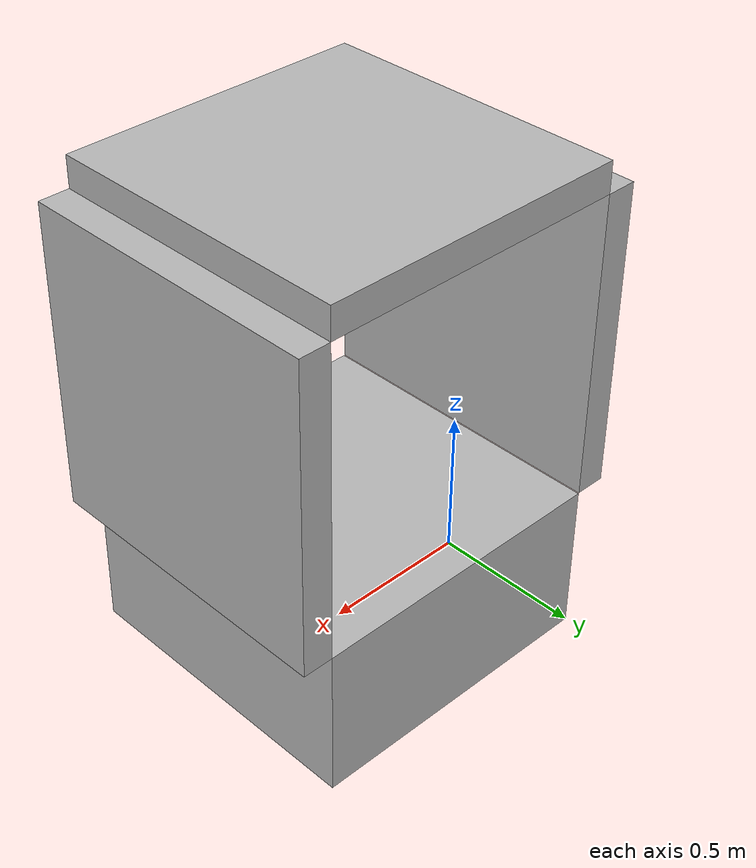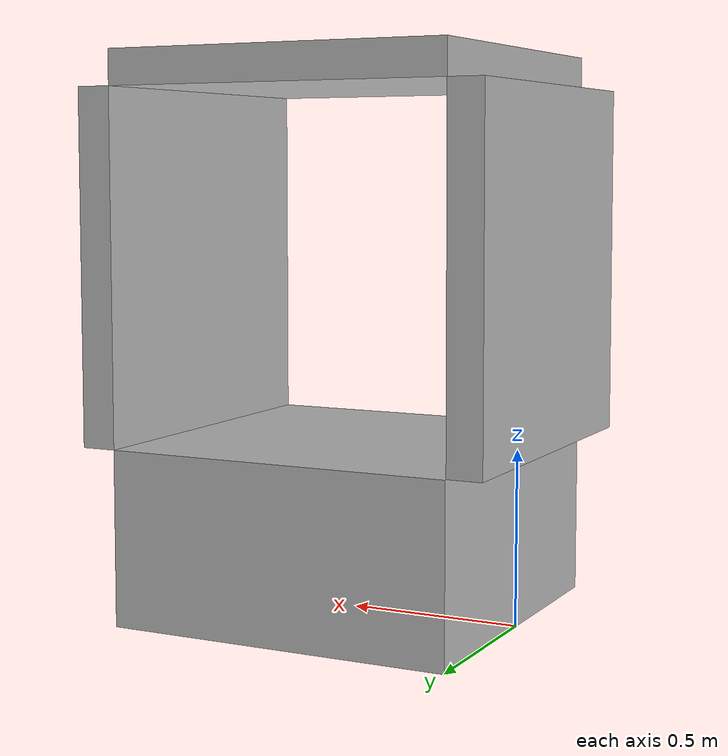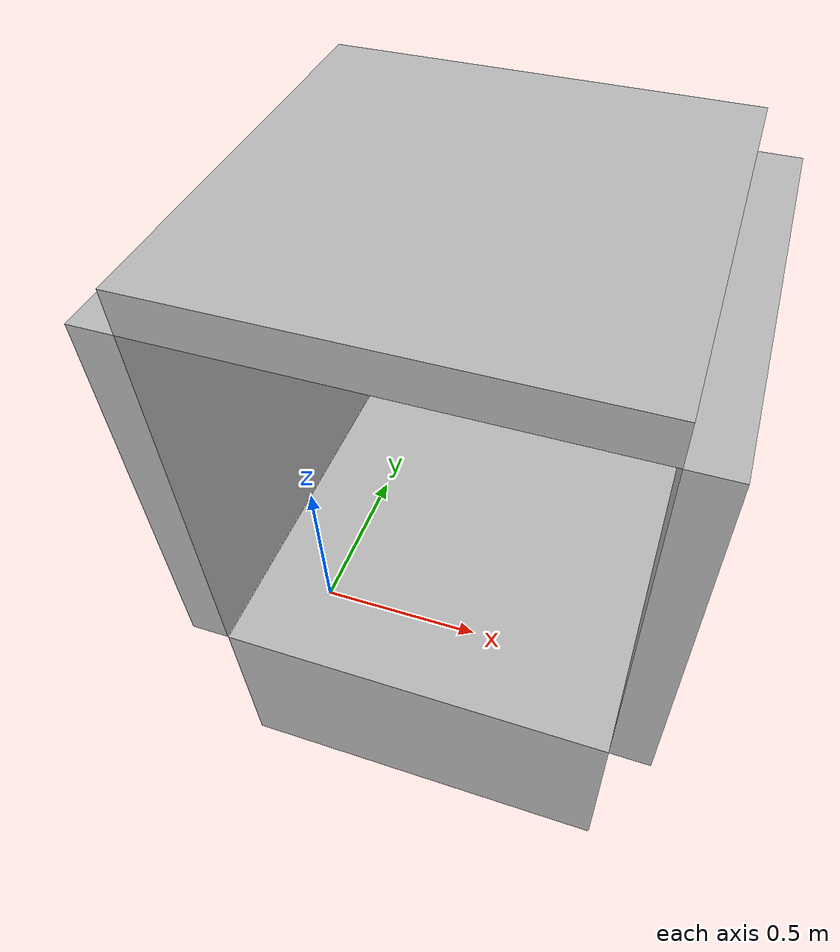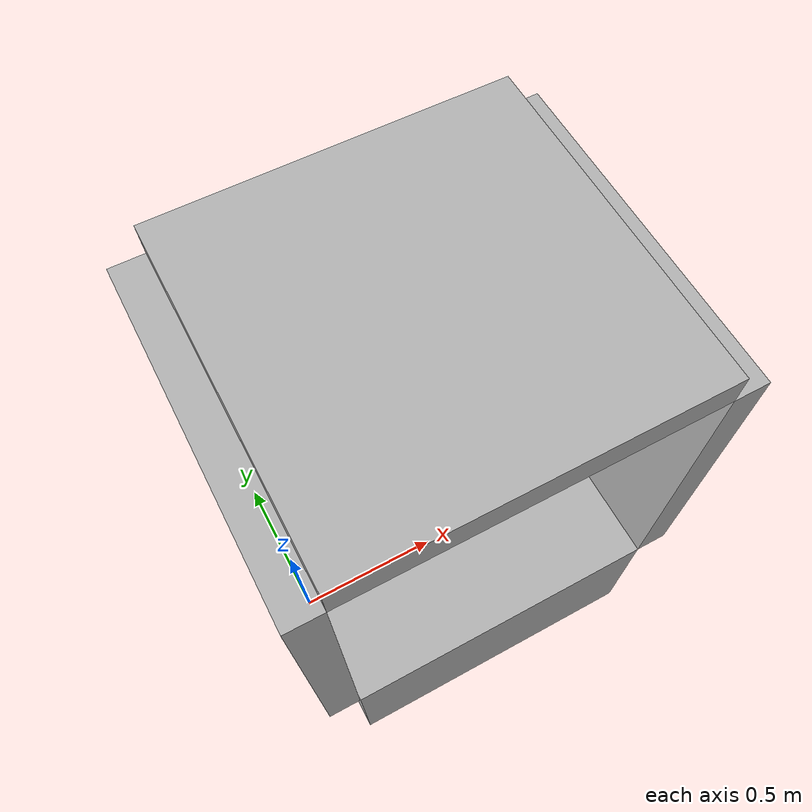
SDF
<sdf version='1.6'>
  <model name='incorrect_xacro'>
    <link name='right_pad1'>
      <pose frame=''>0 0 0 0 -0 0</pose>
      <inertial>
        <pose frame=''>0.5 0 0.25 0 -0 0</pose>
        <mass>0.5</mass>
        <inertia>
          <ixx>0.0001</ixx>
          <ixy>0</ixy>
          <ixz>0</ixz>
          <iyy>0.0001</iyy>
          <iyz>0</iyz>
          <izz>0.0001</izz>
        </inertia>
      </inertial>
      <collision name='right_pad1_collision_collision'>
        <pose frame=''>0.5 0 0.25 0 -0 0</pose>
        <geometry>
          <box>
            <size>1 1 0.5</size>
          </box>
        </geometry>
      </collision>
      <visual name='right_pad1_visual_visual'>
        <pose frame=''>0.5 0 0.25 0 -0 0</pose>
        <geometry>
          <box>
            <size>1 1 0.5</size>
          </box>
        </geometry>
      </visual>
    </link>
    <link name='right_pad2'>
      <pose frame=''>1 0 0.5 0 -1.57 0</pose>
      <inertial>
        <pose frame=''>0.5 0 -0.05 0 -0 0</pose>
        <mass>0.5</mass>
        <inertia>
          <ixx>0.0001</ixx>
          <ixy>0</ixy>
          <ixz>0</ixz>
          <iyy>0.0001</iyy>
          <iyz>0</iyz>
          <izz>0.0001</izz>
        </inertia>
      </inertial>
      <collision name='right_pad2_collision_collision'>
        <pose frame=''>0.5 0 -0.05 0 -0 0</pose>
        <geometry>
          <box>
            <size>1 1 0.1</size>
          </box>
        </geometry>
      </collision>
      <visual name='right_pad2_visual_visual'>
        <pose frame=''>0.5 0 -0.05 0 -0 0</pose>
        <geometry>
          <box>
            <size>1 1 0.1</size>
          </box>
        </geometry>
      </visual>
    </link>
    <joint name='right_pad1_joint' type='revolute'>
      <child>right_pad2</child>
      <parent>right_pad1</parent>
      <axis>
        <xyz>0 1 0</xyz>
        <limit>
          <lower>-3.14</lower>
          <upper>3.14</upper>
          <effort>1000</effort>
          <velocity>1000</velocity>
        </limit>
        <dynamics>
          <damping>0</damping>
          <friction>0</friction>
          <spring_reference>0</spring_reference>
          <spring_stiffness>0</spring_stiffness>
        </dynamics>
        <use_parent_model_frame>1</use_parent_model_frame>
      </axis>
    </joint>
    <link name='right_pad3'>
      <pose frame=''>1.0008 0 1.5 3.14159 -0.001593 3.14159</pose>
      <inertial>
        <pose frame=''>0.5 0 -0.05 0 -0 0</pose>
        <mass>0.5</mass>
        <inertia>
          <ixx>0.0001</ixx>
          <ixy>0</ixy>
          <ixz>0</ixz>
          <iyy>0.0001</iyy>
          <iyz>0</iyz>
          <izz>0.0001</izz>
        </inertia>
      </inertial>
      <collision name='right_pad3_collision_collision'>
        <pose frame=''>0.5 0 -0.05 0 -0 0</pose>
        <geometry>
          <box>
            <size>1 1 0.1</size>
          </box>
        </geometry>
      </collision>
      <visual name='right_pad3_visual_visual'>
        <pose frame=''>0.5 0 -0.05 0 -0 0</pose>
        <geometry>
          <box>
            <size>1 1 0.1</size>
          </box>
        </geometry>
      </visual>
    </link>
    <joint name='right_pad2_joint' type='revolute'>
      <child>right_pad3</child>
      <parent>right_pad2</parent>
      <axis>
        <xyz>0 1 0</xyz>
        <limit>
          <lower>-3.14</lower>
          <upper>3.14</upper>
          <effort>1000</effort>
          <velocity>1000</velocity>
        </limit>
        <dynamics>
          <damping>0</damping>
          <friction>0</friction>
          <spring_reference>0</spring_reference>
          <spring_stiffness>0</spring_stiffness>
        </dynamics>
        <use_parent_model_frame>1</use_parent_model_frame>
      </axis>
    </joint>
    <link name='right_pad4'>
      <pose frame=''>0.000798 0 1.50159 -3.14159 1.56841 -3.14159</pose>
      <inertial>
        <pose frame=''>0.5 0 -0.05 0 -0 0</pose>
        <mass>0.5</mass>
        <inertia>
          <ixx>0.0001</ixx>
          <ixy>0</ixy>
          <ixz>0</ixz>
          <iyy>0.0001</iyy>
          <iyz>0</iyz>
          <izz>0.0001</izz>
        </inertia>
      </inertial>
      <collision name='right_pad4_collision_collision'>
        <pose frame=''>0.5 0 -0.05 0 -0 0</pose>
        <geometry>
          <box>
            <size>1 1 0.1</size>
          </box>
        </geometry>
      </collision>
      <visual name='right_pad4_visual_visual'>
        <pose frame=''>0.5 0 -0.05 0 -0 0</pose>
        <geometry>
          <box>
            <size>1 1 0.1</size>
          </box>
        </geometry>
      </visual>
    </link>
    <joint name='right_pad3_joint' type='revolute'>
      <child>right_pad4</child>
      <parent>right_pad3</parent>
      <axis>
        <xyz>0 1 -0</xyz>
        <limit>
          <lower>-3.14</lower>
          <upper>3.14</upper>
          <effort>1000</effort>
          <velocity>1000</velocity>
        </limit>
        <dynamics>
          <damping>0</damping>
          <friction>0</friction>
          <spring_reference>0</spring_reference>
          <spring_stiffness>0</spring_stiffness>
        </dynamics>
        <use_parent_model_frame>1</use_parent_model_frame>
      </axis>
    </joint>
    <link name='dummy0_connection_right_pad1'>
      <pose frame=''>-0.001591 0 0.501595 0 0.003185 0</pose>
      <inertial>
        <pose frame=''>0 0 0 0 -0 0</pose>
        <mass>0.0005</mass>
        <inertia>
          <ixx>1e-08</ixx>
          <ixy>0</ixy>
          <ixz>0</ixz>
          <iyy>1e-08</iyy>
          <iyz>0</iyz>
          <izz>1e-08</izz>
        </inertia>
      </inertial>
    </link>
    <joint name='connection_joint' type='revolute'>
      <child>dummy0_connection_right_pad1</child>
      <parent>right_pad4</parent>
      <axis>
        <xyz>0 1 -0</xyz>
        <limit>
          <lower>-1e+16</lower>
          <upper>1e+16</upper>
        </limit>
        <dynamics>
          <spring_reference>0</spring_reference>
          <spring_stiffness>0</spring_stiffness>
        </dynamics>
        <use_parent_model_frame>1</use_parent_model_frame>
      </axis>
    </joint>
    <link name='dummy0_origin_right_pad1'>
      <pose frame=''>-0.003184 0 0.001598 0 0.003185 0</pose>
      <inertial>
        <pose frame=''>0 0 0 0 -0 0</pose>
        <mass>0.0005</mass>
        <inertia>
          <ixx>1e-08</ixx>
          <ixy>0</ixy>
          <ixz>0</ixz>
          <iyy>1e-08</iyy>
          <iyz>0</iyz>
          <izz>1e-08</izz>
        </inertia>
      </inertial>
    </link>
    <joint name='origin_joint' type='revolute'>
      <child>dummy0_origin_right_pad1</child>
      <parent>dummy0_connection_right_pad1</parent>
      <axis>
        <xyz>0 1 -0</xyz>
        <limit>
          <lower>-1e+16</lower>
          <upper>1e+16</upper>
        </limit>
        <dynamics>
          <spring_reference>0</spring_reference>
          <spring_stiffness>0</spring_stiffness>
        </dynamics>
        <use_parent_model_frame>1</use_parent_model_frame>
      </axis>
    </joint>
  </model>
</sdf>
